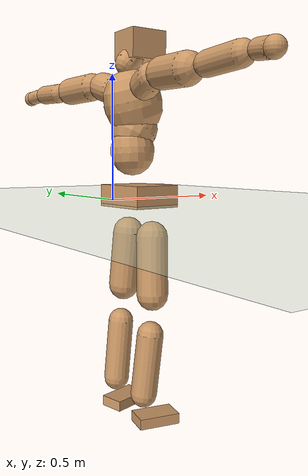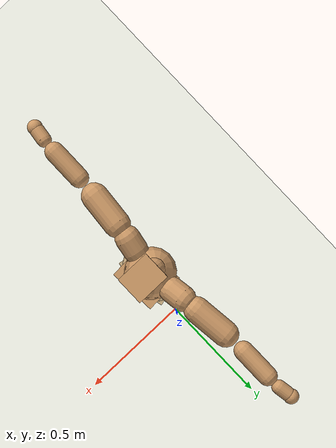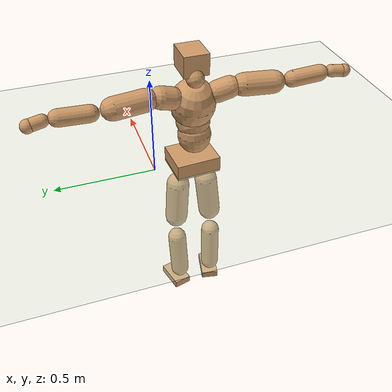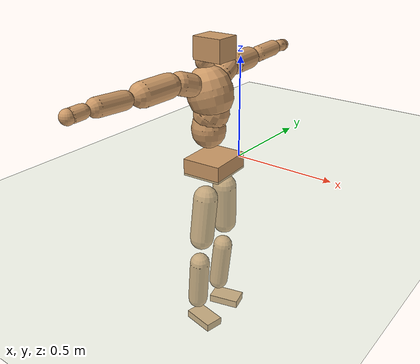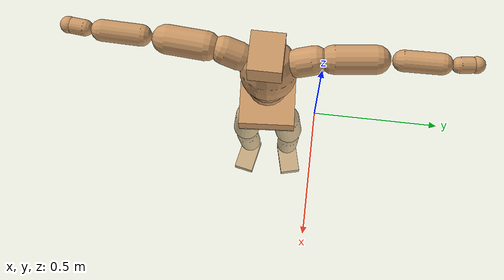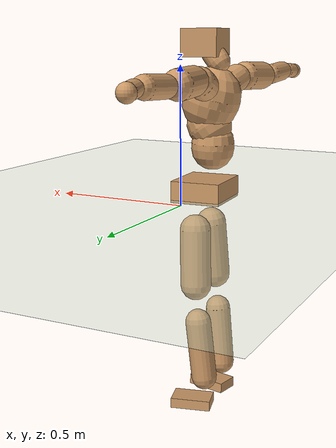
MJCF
<mujoco model="humanoid">
  <compiler coordinate="local" angle="radian"/>
  <default>
    <joint damping="0.0" armature="0.01" stiffness="0.0" limited="true"/>
    <geom conaffinity="1" condim="3" contype="7" margin="0.001" rgba="0.8 0.6 .4 1"/>
  </default>
  <asset>
    <texture type="skybox" builtin="gradient" rgb1=".4 .5 .6" rgb2="0 0 0" width="100" height="100"/>
    <texture builtin="flat" height="1278" mark="cross" markrgb="1 1 1" name="texgeom" random="0.01" rgb1="0.8 0.6 0.4" rgb2="0.8 0.6 0.4" type="cube" width="127"/>
    <texture builtin="checker" height="100" name="texplane" rgb1="0 0 0" rgb2="0.8 0.8 0.8" type="2d" width="100"/>
    <material name="MatPlane" reflectance="0.5" shininess="1" specular="1" texrepeat="60 60" texture="texplane"/>
    <material name="geom" texture="texgeom" texuniform="true"/>
  </asset>
  <worldbody>
    <light cutoff="100" diffuse="1 1 1" dir="-0 0 -1.3" directional="true" exponent="1" pos="0 0 1.3" specular=".1 .1 .1"/>
    <geom conaffinity="1" condim="3" name="floor" pos="0 0 0" rgba="0.8 0.9 0.8 1" size="100 100 .2" type="plane" material="MatPlane"/>
    <body name="Pelvis" pos="-0.0025 -0.196 0.0415">
      <freejoint name="Pelvis"/>
      <geom type="box" contype="1" conaffinity="1" density="500" pos="-0.0038 -0.0002 -0.0125" size="0.0949 0.112 0.0407" quat="0.9995 0.0000 0.0000 0.0306" name="Pelvis"/>
      <body name="L_Hip" pos="0.0034 0.0716 -0.0876">
        <joint name="L_Hip_x" type="hinge" pos="0 0 0" axis="1 0 0" stiffness="800" damping="80" armature="0.02" range="-180.0000 180.0000"/>
        <joint name="L_Hip_y" type="hinge" pos="0 0 0" axis="0 1 0" stiffness="800" damping="80" armature="0.02" range="-180.0000 180.0000"/>
        <joint name="L_Hip_z" type="hinge" pos="0 0 0" axis="0 0 1" stiffness="800" damping="80" armature="0.02" range="-180.0000 180.0000"/>
        <geom type="capsule" contype="1" conaffinity="1" density="500" fromto="-0.0035 0.0052 -0.0706 -0.0141 0.0207 -0.2824" size="0.0586" name="L_Hip"/>
        <body name="L_Knee" pos="-0.0177 0.0259 -0.353">
          <joint name="L_Knee_x" type="hinge" pos="0 0 0" axis="1 0 0" stiffness="800" damping="80" armature="0.02" range="-180.0000 180.0000"/>
          <joint name="L_Knee_y" type="hinge" pos="0 0 0" axis="0 1 0" stiffness="800" damping="80" armature="0.02" range="-180.0000 180.0000"/>
          <joint name="L_Knee_z" type="hinge" pos="0 0 0" axis="0 0 1" stiffness="800" damping="80" armature="0.02" range="-180.0000 180.0000"/>
          <geom type="capsule" contype="1" conaffinity="1" density="500" fromto="-0.0083 -0.0020 -0.0760 -0.0330 -0.0078 -0.3042" size="0.0488" name="L_Knee"/>
          <body name="L_Ankle" pos="-0.0413 -0.0098 -0.3802">
            <joint name="L_Ankle_x" type="hinge" pos="0 0 0" axis="1 0 0" stiffness="800" damping="80" armature="0.02" range="-180.0000 180.0000"/>
            <joint name="L_Ankle_y" type="hinge" pos="0 0 0" axis="0 1 0" stiffness="800" damping="80" armature="0.02" range="-180.0000 180.0000"/>
            <joint name="L_Ankle_z" type="hinge" pos="0 0 0" axis="0 0 1" stiffness="800" damping="80" armature="0.02" range="-180.0000 180.0000"/>
            <geom type="box" contype="1" conaffinity="1" density="500" pos="0.0539 0.0133 -0.0277" size="0.077 0.0462 0.0197" quat="0.9926 0.0000 0.0000 0.1210" name="L_Ankle"/>
            <body name="L_Toe" pos="0.1078 0.0267 -0.0553">
              <joint name="L_Toe_x" type="hinge" pos="0 0 0" axis="1 0 0" stiffness="500" damping="50" armature="0.02" range="-180.0000 180.0000"/>
              <joint name="L_Toe_y" type="hinge" pos="0 0 0" axis="0 1 0" stiffness="500" damping="50" armature="0.02" range="-180.0000 180.0000"/>
              <joint name="L_Toe_z" type="hinge" pos="0 0 0" axis="0 0 1" stiffness="500" damping="50" armature="0.02" range="-180.0000 180.0000"/>
              <geom type="box" contype="1" conaffinity="1" density="500" pos="0.0000 0.0000 0.0278" size="0.001 0.0023 0.001" quat="0.9918 0.0000 0.0000 0.1274" name="L_Toe"/>
            </body>
          </body>
        </body>
      </body>
      <body name="R_Hip" pos="0.0068 -0.0706 -0.0893">
        <joint name="R_Hip_x" type="hinge" pos="0 0 0" axis="1 0 0" stiffness="800" damping="80" armature="0.02" range="-180.0000 180.0000"/>
        <joint name="R_Hip_y" type="hinge" pos="0 0 0" axis="0 1 0" stiffness="800" damping="80" armature="0.02" range="-180.0000 180.0000"/>
        <joint name="R_Hip_z" type="hinge" pos="0 0 0" axis="0 0 1" stiffness="800" damping="80" armature="0.02" range="-180.0000 180.0000"/>
        <geom type="capsule" contype="1" conaffinity="1" density="500" fromto="-0.0036 -0.0066 -0.0714 -0.0144 -0.0265 -0.2857" size="0.0578" name="R_Hip"/>
        <body name="R_Knee" pos="-0.0181 -0.0332 -0.3571">
          <joint name="R_Knee_x" type="hinge" pos="0 0 0" axis="1 0 0" stiffness="800" damping="80" armature="0.02" range="-180.0000 180.0000"/>
          <joint name="R_Knee_y" type="hinge" pos="0 0 0" axis="0 1 0" stiffness="800" damping="80" armature="0.02" range="-180.0000 180.0000"/>
          <joint name="R_Knee_z" type="hinge" pos="0 0 0" axis="0 0 1" stiffness="800" damping="80" armature="0.02" range="-180.0000 180.0000"/>
          <geom type="capsule" contype="1" conaffinity="1" density="500" fromto="-0.0078 0.0024 -0.0763 -0.0311 0.0097 -0.3051" size="0.0489" name="R_Knee"/>
          <body name="R_Ankle" pos="-0.0388 0.0121 -0.3814">
            <joint name="R_Ankle_x" type="hinge" pos="0 0 0" axis="1 0 0" stiffness="800" damping="80" armature="0.02" range="-180.0000 180.0000"/>
            <joint name="R_Ankle_y" type="hinge" pos="0 0 0" axis="0 1 0" stiffness="800" damping="80" armature="0.02" range="-180.0000 180.0000"/>
            <joint name="R_Ankle_z" type="hinge" pos="0 0 0" axis="0 0 1" stiffness="800" damping="80" armature="0.02" range="-180.0000 180.0000"/>
            <geom type="box" contype="1" conaffinity="1" density="500" pos="0.0558 -0.0114 -0.0234" size="0.0789 0.045 0.0196" quat="0.9949 0.0000 0.0000 -0.1009" name="R_Ankle"/>
            <body name="R_Toe" pos="0.1117 -0.0229 -0.0467">
              <joint name="R_Toe_x" type="hinge" pos="0 0 0" axis="1 0 0" stiffness="500" damping="50" armature="0.02" range="-180.0000 180.0000"/>
              <joint name="R_Toe_y" type="hinge" pos="0 0 0" axis="0 1 0" stiffness="500" damping="50" armature="0.02" range="-180.0000 180.0000"/>
              <joint name="R_Toe_z" type="hinge" pos="0 0 0" axis="0 0 1" stiffness="500" damping="50" armature="0.02" range="-180.0000 180.0000"/>
              <geom type="box" contype="1" conaffinity="1" density="500" pos="0.0000 0.0000 0.0251" size="0.0009 0.0023 0.0011" quat="0.9959 0.0000 0.0000 -0.0907" name="R_Toe"/>
            </body>
          </body>
        </body>
      </body>
      <body name="Torso" pos="-0.0329 -0.0024 0.1017">
        <joint name="Torso_x" type="hinge" pos="0 0 0" axis="1 0 0" stiffness="1000" damping="100" armature="0.02" range="-180.0000 180.0000"/>
        <joint name="Torso_y" type="hinge" pos="0 0 0" axis="0 1 0" stiffness="1000" damping="100" armature="0.02" range="-180.0000 180.0000"/>
        <joint name="Torso_z" type="hinge" pos="0 0 0" axis="0 0 1" stiffness="1000" damping="100" armature="0.02" range="-180.0000 180.0000"/>
        <geom type="capsule" contype="1" conaffinity="1" density="500" fromto="-0.0017 0.0020 0.0645 -0.0012 0.0013 0.0430" size="0.0806" name="Torso"/>
        <body name="Spine" pos="-0.0029 0.0033 0.1075">
          <joint name="Spine_x" type="hinge" pos="0 0 0" axis="1 0 0" stiffness="1000" damping="100" armature="0.02" range="-180.0000 180.0000"/>
          <joint name="Spine_y" type="hinge" pos="0 0 0" axis="0 1 0" stiffness="1000" damping="100" armature="0.02" range="-180.0000 180.0000"/>
          <joint name="Spine_z" type="hinge" pos="0 0 0" axis="0 0 1" stiffness="1000" damping="100" armature="0.02" range="-180.0000 180.0000"/>
          <geom type="capsule" contype="1" conaffinity="1" density="500" fromto="0.0179 0.0020 0.0276 0.0120 0.0014 0.0184" size="0.0826" name="Spine"/>
          <body name="Chest" pos="0.0299 0.0034 0.0459">
            <joint name="Chest_x" type="hinge" pos="0 0 0" axis="1 0 0" stiffness="1000" damping="100" armature="0.02" range="-180.0000 180.0000"/>
            <joint name="Chest_y" type="hinge" pos="0 0 0" axis="0 1 0" stiffness="1000" damping="100" armature="0.02" range="-180.0000 180.0000"/>
            <joint name="Chest_z" type="hinge" pos="0 0 0" axis="0 0 1" stiffness="1000" damping="100" armature="0.02" range="-180.0000 180.0000"/>
            <geom type="capsule" contype="1" conaffinity="1" density="500" fromto="-0.0281 -0.0006 0.0879 -0.0187 -0.0004 0.0586" size="0.1068" name="Chest"/>
            <body name="Neck" pos="-0.0591 -0.0018 0.2003">
              <joint name="Neck_x" type="hinge" pos="0 0 0" axis="1 0 0" stiffness="500" damping="50" armature="0.02" range="-180.0000 180.0000"/>
              <joint name="Neck_y" type="hinge" pos="0 0 0" axis="0 1 0" stiffness="500" damping="50" armature="0.02" range="-180.0000 180.0000"/>
              <joint name="Neck_z" type="hinge" pos="0 0 0" axis="0 0 1" stiffness="500" damping="50" armature="0.02" range="-180.0000 180.0000"/>
              <geom type="capsule" contype="1" conaffinity="1" density="500" fromto="0.0086 -0.0004 0.0101 0.0343 -0.0016 0.0404" size="0.0428" name="Neck"/>
              <body name="Head" pos="0.0429 -0.002 0.0504">
                <joint name="Head_x" type="hinge" pos="0 0 0" axis="1 0 0" stiffness="500" damping="50" armature="0.02" range="-180.0000 180.0000"/>
                <joint name="Head_y" type="hinge" pos="0 0 0" axis="0 1 0" stiffness="500" damping="50" armature="0.02" range="-180.0000 180.0000"/>
                <joint name="Head_z" type="hinge" pos="0 0 0" axis="0 0 1" stiffness="500" damping="50" armature="0.02" range="-180.0000 180.0000"/>
                <geom type="box" contype="1" conaffinity="1" density="500" pos="0.0224 0.0000 0.0262" size="0.072 0.0601 0.0512" quat="1.0000 0.0000 0.0000 0.0000" name="Head"/>
              </body>
            </body>
            <body name="L_Thorax" pos="-0.0392 0.0879 0.1206">
              <joint name="L_Thorax_x" type="hinge" pos="0 0 0" axis="1 0 0" stiffness="500" damping="50" armature="0.02" range="-180.0000 180.0000"/>
              <joint name="L_Thorax_y" type="hinge" pos="0 0 0" axis="0 1 0" stiffness="500" damping="50" armature="0.02" range="-180.0000 180.0000"/>
              <joint name="L_Thorax_z" type="hinge" pos="0 0 0" axis="0 0 1" stiffness="500" damping="50" armature="0.02" range="-180.0000 180.0000"/>
              <geom type="capsule" contype="1" conaffinity="1" density="500" fromto="-0.0028 0.0186 0.0063 -0.0114 0.0745 0.0253" size="0.0536" name="L_Thorax"/>
              <body name="L_Shoulder" pos="-0.0142 0.0932 0.0316">
                <joint name="L_Shoulder_x" type="hinge" pos="0 0 0" axis="1 0 0" stiffness="500" damping="50" armature="0.02" range="-720.0000 720.0000"/>
                <joint name="L_Shoulder_y" type="hinge" pos="0 0 0" axis="0 1 0" stiffness="500" damping="50" armature="0.02" range="-720.0000 720.0000"/>
                <joint name="L_Shoulder_z" type="hinge" pos="0 0 0" axis="0 0 1" stiffness="500" damping="50" armature="0.02" range="-720.0000 720.0000"/>
                <geom type="capsule" contype="1" conaffinity="1" density="500" fromto="-0.0060 0.0503 -0.0012 -0.0239 0.2013 -0.0050" size="0.0536" name="L_Shoulder"/>
                <body name="L_Elbow" pos="-0.0299 0.2516 -0.0062">
                  <joint name="L_Elbow_x" type="hinge" pos="0 0 0" axis="1 0 0" stiffness="500" damping="50" armature="0.02" range="-720.0000 720.0000"/>
                  <joint name="L_Elbow_y" type="hinge" pos="0 0 0" axis="0 1 0" stiffness="500" damping="50" armature="0.02" range="-720.0000 720.0000"/>
                  <joint name="L_Elbow_z" type="hinge" pos="0 0 0" axis="0 0 1" stiffness="500" damping="50" armature="0.02" range="-720.0000 720.0000"/>
                  <geom type="capsule" contype="1" conaffinity="1" density="500" fromto="-0.0000 0.0462 0.0019 -0.0002 0.1850 0.0078" size="0.0396" name="L_Elbow"/>
                  <body name="L_Wrist" pos="-0.0002 0.2312 0.0097">
                    <joint name="L_Wrist_x" type="hinge" pos="0 0 0" axis="1 0 0" stiffness="300" damping="30" armature="0.02" range="-180.0000 180.0000"/>
                    <joint name="L_Wrist_y" type="hinge" pos="0 0 0" axis="0 1 0" stiffness="300" damping="30" armature="0.02" range="-180.0000 180.0000"/>
                    <joint name="L_Wrist_z" type="hinge" pos="0 0 0" axis="0 0 1" stiffness="300" damping="30" armature="0.02" range="-180.0000 180.0000"/>
                    <geom type="capsule" contype="1" conaffinity="1" density="500" fromto="-0.0026 0.0156 -0.0018 -0.0102 0.0623 -0.0074" size="0.0297" name="L_Wrist"/>
                    <body name="L_Hand" pos="-0.0128 0.0779 -0.0092">
                      <joint name="L_Hand_x" type="hinge" pos="0 0 0" axis="1 0 0" stiffness="300" damping="30" armature="0.02" range="-180.0000 180.0000"/>
                      <joint name="L_Hand_y" type="hinge" pos="0 0 0" axis="0 1 0" stiffness="300" damping="30" armature="0.02" range="-180.0000 180.0000"/>
                      <joint name="L_Hand_z" type="hinge" pos="0 0 0" axis="0 0 1" stiffness="300" damping="30" armature="0.02" range="-180.0000 180.0000"/>
                      <geom type="sphere" contype="1" conaffinity="1" density="500" size="0.0315" pos="0.0000 0.0000 0.0000" name="L_Hand"/>
                    </body>
                  </body>
                </body>
              </body>
            </body>
            <body name="R_Thorax" pos="-0.0421 -0.089 0.1185">
              <joint name="R_Thorax_x" type="hinge" pos="0 0 0" axis="1 0 0" stiffness="500" damping="50" armature="0.02" range="-180.0000 180.0000"/>
              <joint name="R_Thorax_y" type="hinge" pos="0 0 0" axis="0 1 0" stiffness="500" damping="50" armature="0.02" range="-180.0000 180.0000"/>
              <joint name="R_Thorax_z" type="hinge" pos="0 0 0" axis="0 0 1" stiffness="500" damping="50" armature="0.02" range="-180.0000 180.0000"/>
              <geom type="capsule" contype="1" conaffinity="1" density="500" fromto="-0.0033 -0.0190 0.0063 -0.0131 -0.0758 0.0254" size="0.0526" name="R_Thorax"/>
              <body name="R_Shoulder" pos="-0.0164 -0.0948 0.0317">
                <joint name="R_Shoulder_x" type="hinge" pos="0 0 0" axis="1 0 0" stiffness="500" damping="50" armature="0.02" range="-720.0000 720.0000"/>
                <joint name="R_Shoulder_y" type="hinge" pos="0 0 0" axis="0 1 0" stiffness="500" damping="50" armature="0.02" range="-720.0000 720.0000"/>
                <joint name="R_Shoulder_z" type="hinge" pos="0 0 0" axis="0 0 1" stiffness="500" damping="50" armature="0.02" range="-720.0000 720.0000"/>
                <geom type="capsule" contype="1" conaffinity="1" density="500" fromto="-0.0041 -0.0481 -0.0017 -0.0165 -0.1922 -0.0069" size="0.055" name="R_Shoulder"/>
                <body name="R_Elbow" pos="-0.0207 -0.2403 -0.0087">
                  <joint name="R_Elbow_x" type="hinge" pos="0 0 0" axis="1 0 0" stiffness="500" damping="50" armature="0.02" range="-720.0000 720.0000"/>
                  <joint name="R_Elbow_y" type="hinge" pos="0 0 0" axis="0 1 0" stiffness="500" damping="50" armature="0.02" range="-720.0000 720.0000"/>
                  <joint name="R_Elbow_z" type="hinge" pos="0 0 0" axis="0 0 1" stiffness="500" damping="50" armature="0.02" range="-720.0000 720.0000"/>
                  <geom type="capsule" contype="1" conaffinity="1" density="500" fromto="-0.0002 -0.0472 0.0027 -0.0008 -0.1890 0.0107" size="0.04" name="R_Elbow"/>
                  <body name="R_Wrist" pos="-0.001 -0.2362 0.0134">
                    <joint name="R_Wrist_x" type="hinge" pos="0 0 0" axis="1 0 0" stiffness="300" damping="30" armature="0.02" range="-180.0000 180.0000"/>
                    <joint name="R_Wrist_y" type="hinge" pos="0 0 0" axis="0 1 0" stiffness="300" damping="30" armature="0.02" range="-180.0000 180.0000"/>
                    <joint name="R_Wrist_z" type="hinge" pos="0 0 0" axis="0 0 1" stiffness="300" damping="30" armature="0.02" range="-180.0000 180.0000"/>
                    <geom type="capsule" contype="1" conaffinity="1" density="500" fromto="-0.0020 -0.0155 -0.0014 -0.0080 -0.0619 -0.0055" size="0.0302" name="R_Wrist"/>
                    <body name="R_Hand" pos="-0.01 -0.0774 -0.0069">
                      <joint name="R_Hand_x" type="hinge" pos="0 0 0" axis="1 0 0" stiffness="300" damping="30" armature="0.02" range="-180.0000 180.0000"/>
                      <joint name="R_Hand_y" type="hinge" pos="0 0 0" axis="0 1 0" stiffness="300" damping="30" armature="0.02" range="-180.0000 180.0000"/>
                      <joint name="R_Hand_z" type="hinge" pos="0 0 0" axis="0 0 1" stiffness="300" damping="30" armature="0.02" range="-180.0000 180.0000"/>
                      <geom type="sphere" contype="1" conaffinity="1" density="500" size="0.0313" pos="0.0000 0.0000 0.0000" name="R_Hand"/>
                    </body>
                  </body>
                </body>
              </body>
            </body>
          </body>
        </body>
      </body>
    </body>
  </worldbody>
  <actuator>
    <motor name="L_Hip_x" joint="L_Hip_x" gear="500"/>
    <motor name="L_Hip_y" joint="L_Hip_y" gear="500"/>
    <motor name="L_Hip_z" joint="L_Hip_z" gear="500"/>
    <motor name="L_Knee_x" joint="L_Knee_x" gear="500"/>
    <motor name="L_Knee_y" joint="L_Knee_y" gear="500"/>
    <motor name="L_Knee_z" joint="L_Knee_z" gear="500"/>
    <motor name="L_Ankle_x" joint="L_Ankle_x" gear="500"/>
    <motor name="L_Ankle_y" joint="L_Ankle_y" gear="500"/>
    <motor name="L_Ankle_z" joint="L_Ankle_z" gear="500"/>
    <motor name="L_Toe_x" joint="L_Toe_x" gear="500"/>
    <motor name="L_Toe_y" joint="L_Toe_y" gear="500"/>
    <motor name="L_Toe_z" joint="L_Toe_z" gear="500"/>
    <motor name="R_Hip_x" joint="R_Hip_x" gear="500"/>
    <motor name="R_Hip_y" joint="R_Hip_y" gear="500"/>
    <motor name="R_Hip_z" joint="R_Hip_z" gear="500"/>
    <motor name="R_Knee_x" joint="R_Knee_x" gear="500"/>
    <motor name="R_Knee_y" joint="R_Knee_y" gear="500"/>
    <motor name="R_Knee_z" joint="R_Knee_z" gear="500"/>
    <motor name="R_Ankle_x" joint="R_Ankle_x" gear="500"/>
    <motor name="R_Ankle_y" joint="R_Ankle_y" gear="500"/>
    <motor name="R_Ankle_z" joint="R_Ankle_z" gear="500"/>
    <motor name="R_Toe_x" joint="R_Toe_x" gear="500"/>
    <motor name="R_Toe_y" joint="R_Toe_y" gear="500"/>
    <motor name="R_Toe_z" joint="R_Toe_z" gear="500"/>
    <motor name="Torso_x" joint="Torso_x" gear="500"/>
    <motor name="Torso_y" joint="Torso_y" gear="500"/>
    <motor name="Torso_z" joint="Torso_z" gear="500"/>
    <motor name="Spine_x" joint="Spine_x" gear="500"/>
    <motor name="Spine_y" joint="Spine_y" gear="500"/>
    <motor name="Spine_z" joint="Spine_z" gear="500"/>
    <motor name="Chest_x" joint="Chest_x" gear="500"/>
    <motor name="Chest_y" joint="Chest_y" gear="500"/>
    <motor name="Chest_z" joint="Chest_z" gear="500"/>
    <motor name="Neck_x" joint="Neck_x" gear="500"/>
    <motor name="Neck_y" joint="Neck_y" gear="500"/>
    <motor name="Neck_z" joint="Neck_z" gear="500"/>
    <motor name="Head_x" joint="Head_x" gear="500"/>
    <motor name="Head_y" joint="Head_y" gear="500"/>
    <motor name="Head_z" joint="Head_z" gear="500"/>
    <motor name="L_Thorax_x" joint="L_Thorax_x" gear="500"/>
    <motor name="L_Thorax_y" joint="L_Thorax_y" gear="500"/>
    <motor name="L_Thorax_z" joint="L_Thorax_z" gear="500"/>
    <motor name="L_Shoulder_x" joint="L_Shoulder_x" gear="500"/>
    <motor name="L_Shoulder_y" joint="L_Shoulder_y" gear="500"/>
    <motor name="L_Shoulder_z" joint="L_Shoulder_z" gear="500"/>
    <motor name="L_Elbow_x" joint="L_Elbow_x" gear="500"/>
    <motor name="L_Elbow_y" joint="L_Elbow_y" gear="500"/>
    <motor name="L_Elbow_z" joint="L_Elbow_z" gear="500"/>
    <motor name="L_Wrist_x" joint="L_Wrist_x" gear="500"/>
    <motor name="L_Wrist_y" joint="L_Wrist_y" gear="500"/>
    <motor name="L_Wrist_z" joint="L_Wrist_z" gear="500"/>
    <motor name="L_Hand_x" joint="L_Hand_x" gear="500"/>
    <motor name="L_Hand_y" joint="L_Hand_y" gear="500"/>
    <motor name="L_Hand_z" joint="L_Hand_z" gear="500"/>
    <motor name="R_Thorax_x" joint="R_Thorax_x" gear="500"/>
    <motor name="R_Thorax_y" joint="R_Thorax_y" gear="500"/>
    <motor name="R_Thorax_z" joint="R_Thorax_z" gear="500"/>
    <motor name="R_Shoulder_x" joint="R_Shoulder_x" gear="500"/>
    <motor name="R_Shoulder_y" joint="R_Shoulder_y" gear="500"/>
    <motor name="R_Shoulder_z" joint="R_Shoulder_z" gear="500"/>
    <motor name="R_Elbow_x" joint="R_Elbow_x" gear="500"/>
    <motor name="R_Elbow_y" joint="R_Elbow_y" gear="500"/>
    <motor name="R_Elbow_z" joint="R_Elbow_z" gear="500"/>
    <motor name="R_Wrist_x" joint="R_Wrist_x" gear="500"/>
    <motor name="R_Wrist_y" joint="R_Wrist_y" gear="500"/>
    <motor name="R_Wrist_z" joint="R_Wrist_z" gear="500"/>
    <motor name="R_Hand_x" joint="R_Hand_x" gear="500"/>
    <motor name="R_Hand_y" joint="R_Hand_y" gear="500"/>
    <motor name="R_Hand_z" joint="R_Hand_z" gear="500"/>
  </actuator>
  <contact>
    <exclude body1="Torso" body2="Chest"/>
    <exclude body1="Head" body2="Chest"/>
    <exclude body1="R_Knee" body2="R_Toe"/>
    <exclude body1="R_Knee" body2="L_Ankle"/>
    <exclude body1="R_Knee" body2="L_Toe"/>
    <exclude body1="L_Knee" body2="L_Toe"/>
    <exclude body1="L_Knee" body2="R_Ankle"/>
    <exclude body1="L_Knee" body2="R_Toe"/>
    <exclude body1="L_Shoulder" body2="Chest"/>
    <exclude body1="R_Shoulder" body2="Chest"/>
  </contact>
  <sensor/>
  <size njmax="700" nconmax="700"/>
</mujoco>
